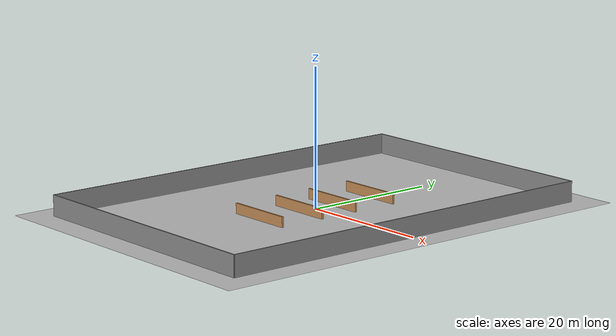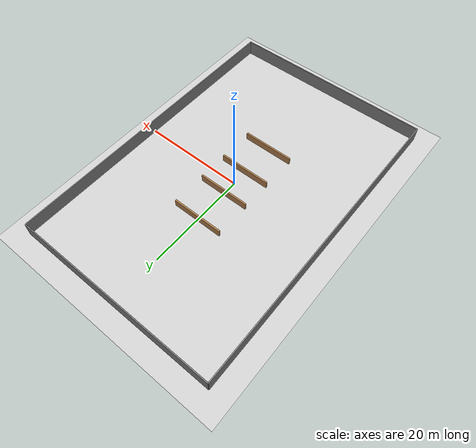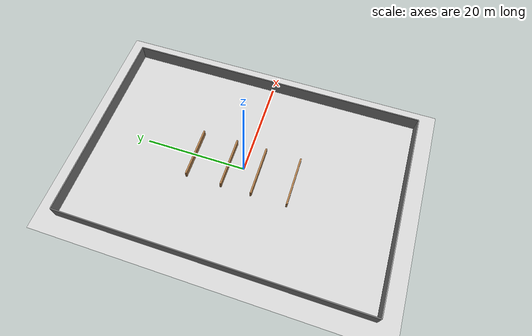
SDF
<?xml version="1.0"?>
<!-- Warehouse World for SwarmNav-Sim -->
<!-- This is a placeholder. Actual world should be created in Isaac Sim or Gazebo -->
<sdf version="1.6">
  <world name="warehouse">

    <!-- Physics -->
    <physics type="ode">
      <max_step_size>0.004</max_step_size>
      <real_time_factor>1.0</real_time_factor>
      <real_time_update_rate>250</real_time_update_rate>
      <ode>
        <solver>
          <type>quick</type>
          <iters>50</iters>
          <sor>1.3</sor>
        </solver>
        <constraints>
          <cfm>0.0</cfm>
          <erp>0.2</erp>
          <contact_max_correcting_vel>100.0</contact_max_correcting_vel>
          <contact_surface_layer>0.001</contact_surface_layer>
        </constraints>
      </ode>
    </physics>

    <scene>
      <ambient>0.4 0.4 0.4 1</ambient>
      <background>0.7 0.7 0.7 1</background>
      <shadows>true</shadows>
    </scene>

    <gui fullscreen='0'>
      <camera name='user_camera'>
        <pose>-20 -20 20 0 0.5 0.785</pose>
        <view_controller>orbit</view_controller>
      </camera>
    </gui>

    <!-- Lighting -->
    <light name="sun" type="directional">
      <cast_shadows>true</cast_shadows>
      <pose>0 0 10 0 0 0</pose>
      <diffuse>0.8 0.8 0.8 1</diffuse>
      <specular>0.2 0.2 0.2 1</specular>
      <attenuation>
        <range>1000</range>
        <constant>0.9</constant>
        <linear>0.01</linear>
        <quadratic>0.001</quadratic>
      </attenuation>
      <direction>-0.5 0.1 -0.9</direction>
    </light>

    <!-- Ground Plane -->
    <model name="ground_plane">
      <static>true</static>
      <link name="link">
        <collision name="collision">
          <geometry>
            <plane>
              <normal>0 0 1</normal>
              <size>100 100</size>
            </plane>
          </geometry>
        </collision>
        <visual name="visual">
          <geometry>
            <plane>
              <normal>0 0 1</normal>
              <size>100 100</size>
            </plane>
          </geometry>
          <material>
            <ambient>0.8 0.8 0.8 1</ambient>
            <diffuse>0.8 0.8 0.8 1</diffuse>
          </material>
        </visual>
      </link>
    </model>

    <!-- Warehouse Boundaries (40m x 60m) -->
    <!-- North Wall -->
    <model name="wall_north">
      <static>true</static>
      <pose>0 30 1.5 0 0 0</pose>
      <link name="link">
        <collision name="collision">
          <geometry>
            <box>
              <size>40 0.2 3</size>
            </box>
          </geometry>
        </collision>
        <visual name="visual">
          <geometry>
            <box>
              <size>40 0.2 3</size>
            </box>
          </geometry>
          <material>
            <ambient>0.5 0.5 0.5 1</ambient>
            <diffuse>0.5 0.5 0.5 1</diffuse>
          </material>
        </visual>
      </link>
    </model>

    <!-- South Wall -->
    <model name="wall_south">
      <static>true</static>
      <pose>0 -30 1.5 0 0 0</pose>
      <link name="link">
        <collision name="collision">
          <geometry>
            <box>
              <size>40 0.2 3</size>
            </box>
          </geometry>
        </collision>
        <visual name="visual">
          <geometry>
            <box>
              <size>40 0.2 3</size>
            </box>
          </geometry>
          <material>
            <ambient>0.5 0.5 0.5 1</ambient>
            <diffuse>0.5 0.5 0.5 1</diffuse>
          </material>
        </visual>
      </link>
    </model>

    <!-- East Wall -->
    <model name="wall_east">
      <static>true</static>
      <pose>20 0 1.5 0 0 0</pose>
      <link name="link">
        <collision name="collision">
          <geometry>
            <box>
              <size>0.2 60 3</size>
            </box>
          </geometry>
        </collision>
        <visual name="visual">
          <geometry>
            <box>
              <size>0.2 60 3</size>
            </box>
          </geometry>
          <material>
            <ambient>0.5 0.5 0.5 1</ambient>
            <diffuse>0.5 0.5 0.5 1</diffuse>
          </material>
        </visual>
      </link>
    </model>

    <!-- West Wall -->
    <model name="wall_west">
      <static>true</static>
      <pose>-20 0 1.5 0 0 0</pose>
      <link name="link">
        <collision name="collision">
          <geometry>
            <box>
              <size>0.2 60 3</size>
            </box>
          </geometry>
        </collision>
        <visual name="visual">
          <geometry>
            <box>
              <size>0.2 60 3</size>
            </box>
          </geometry>
          <material>
            <ambient>0.5 0.5 0.5 1</ambient>
            <diffuse>0.5 0.5 0.5 1</diffuse>
          </material>
        </visual>
      </link>
    </model>

    <!-- Shelving Aisles (4 rows with 2 cross-aisles) -->
    <!-- Aisle 1 at Y=-10 -->
    <model name="shelf_aisle_1">
      <static>true</static>
      <pose>0 -10 0.75 0 0 0</pose>
      <link name="link">
        <collision name="collision">
          <geometry>
            <box>
              <size>10 0.3 1.5</size>
            </box>
          </geometry>
        </collision>
        <visual name="visual">
          <geometry>
            <box>
              <size>10 0.3 1.5</size>
            </box>
          </geometry>
          <material>
            <ambient>0.7 0.5 0.3 1</ambient>
            <diffuse>0.7 0.5 0.3 1</diffuse>
          </material>
        </visual>
      </link>
    </model>

    <!-- Aisle 2 at Y=-3 -->
    <model name="shelf_aisle_2">
      <static>true</static>
      <pose>0 -3 0.75 0 0 0</pose>
      <link name="link">
        <collision name="collision">
          <geometry>
            <box>
              <size>10 0.3 1.5</size>
            </box>
          </geometry>
        </collision>
        <visual name="visual">
          <geometry>
            <box>
              <size>10 0.3 1.5</size>
            </box>
          </geometry>
          <material>
            <ambient>0.7 0.5 0.3 1</ambient>
            <diffuse>0.7 0.5 0.3 1</diffuse>
          </material>
        </visual>
      </link>
    </model>

    <!-- Aisle 3 at Y=3 -->
    <model name="shelf_aisle_3">
      <static>true</static>
      <pose>0 3 0.75 0 0 0</pose>
      <link name="link">
        <collision name="collision">
          <geometry>
            <box>
              <size>10 0.3 1.5</size>
            </box>
          </geometry>
        </collision>
        <visual name="visual">
          <geometry>
            <box>
              <size>10 0.3 1.5</size>
            </box>
          </geometry>
          <material>
            <ambient>0.7 0.5 0.3 1</ambient>
            <diffuse>0.7 0.5 0.3 1</diffuse>
          </material>
        </visual>
      </link>
    </model>

    <!-- Aisle 4 at Y=10 -->
    <model name="shelf_aisle_4">
      <static>true</static>
      <pose>0 10 0.75 0 0 0</pose>
      <link name="link">
        <collision name="collision">
          <geometry>
            <box>
              <size>10 0.3 1.5</size>
            </box>
          </geometry>
        </collision>
        <visual name="visual">
          <geometry>
            <box>
              <size>10 0.3 1.5</size>
            </box>
          </geometry>
          <material>
            <ambient>0.7 0.5 0.3 1</ambient>
            <diffuse>0.7 0.5 0.3 1</diffuse>
          </material>
        </visual>
      </link>
    </model>

    <!-- Note: Cross-aisles are naturally formed by gaps in shelving layout -->

  </world>
</sdf>
